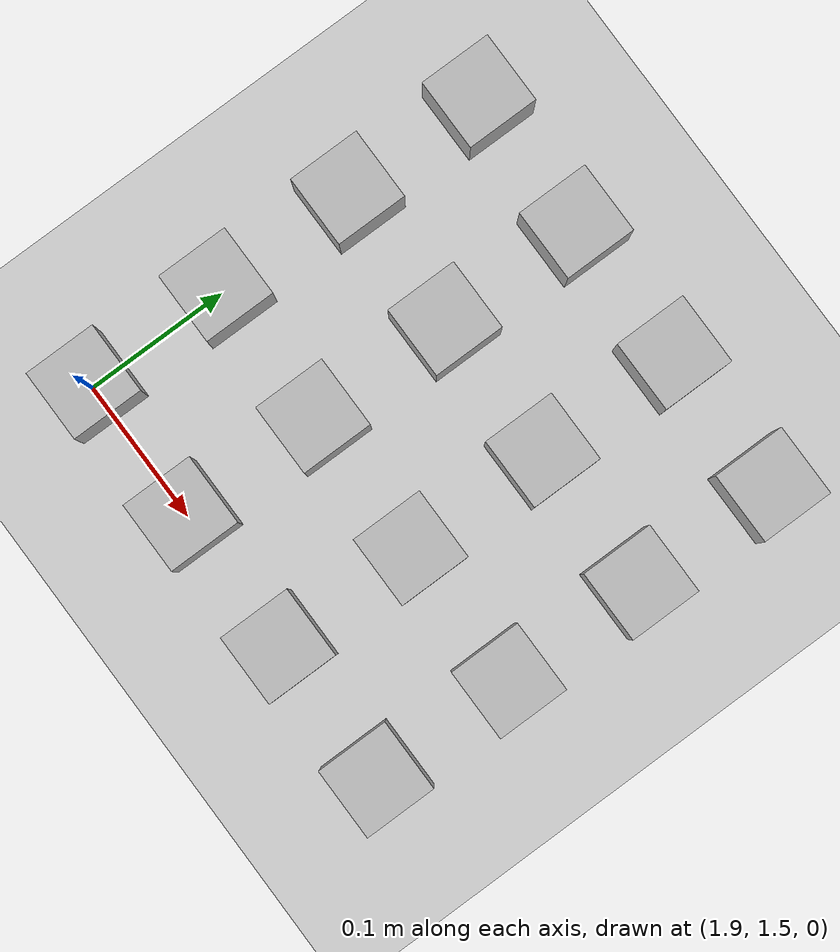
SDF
<sdf version="1.6">
 <world name="default">
  <model name="ground_plane">
   <static>1</static>
   <link name="link">
    <collision name="collision">
     <geometry><plane><normal>0 0 1</normal><size>100 100</size></plane></geometry>
     <surface><friction><ode><mu>100</mu><mu2>50</mu2></ode></friction></surface>
    </collision>
    <visual name="visual">
     <cast_shadows>0</cast_shadows>
     <geometry><plane><normal>0 0 1</normal><size>100 100</size></plane></geometry>
     <material>
      <script><uri>file://media/materials/scripts/gazebo.material</uri><name>Gazebo/Grey</name></script>
     </material>
    </visual>
   </link>
  </model>
  <model name="at68">
   <static>0</static>
   <link name="link">
    <inertial>
     <mass>0.01</mass>
     <inertia><ixx>4e-05</ixx><ixy>0</ixy><ixz>0</ixz><iyy>4e-05</iyy><iyz>0</iyz><izz>4e-05</izz></inertia>
    </inertial>
    <visual name="visual">
     <geometry><box><size>0.05 0.05 0.05</size></box></geometry>
     <material>
      <script>
       <uri>model://at0/materials/scripts</uri>
       <uri>model://at0/materials/textures</uri>
       <name>at0/Diffuse</name>
      </script>
     </material>
    </visual>
    <collision name="collision">
     <geometry><box><size>0.05 0.05 0.05</size></box></geometry>
     <surface><friction><ode><mu>0.8</mu><mu2>0.7</mu2></ode></friction></surface>
    </collision>
   </link>
   <pose>1.9 1.7 0.025 0 -0 0</pose>
  </model>
  <model name="at69">
   <static>0</static>
   <link name="link">
    <inertial>
     <mass>0.01</mass>
     <inertia><ixx>4e-05</ixx><ixy>0</ixy><ixz>0</ixz><iyy>4e-05</iyy><iyz>0</iyz><izz>4e-05</izz></inertia>
    </inertial>
    <visual name="visual">
     <geometry><box><size>0.05 0.05 0.05</size></box></geometry>
     <material>
      <script>
       <uri>model://at0/materials/scripts</uri>
       <uri>model://at0/materials/textures</uri>
       <name>at0/Diffuse</name>
      </script>
     </material>
    </visual>
    <collision name="collision">
     <geometry><box><size>0.05 0.05 0.05</size></box></geometry>
     <surface><friction><ode><mu>0.8</mu><mu2>0.7</mu2></ode></friction></surface>
    </collision>
   </link>
   <pose>2.0 1.7 0.025 0 -0 0</pose>
  </model>
  <model name="at70">
   <static>0</static>
   <link name="link">
    <inertial>
     <mass>0.01</mass>
     <inertia><ixx>4e-05</ixx><ixy>0</ixy><ixz>0</ixz><iyy>4e-05</iyy><iyz>0</iyz><izz>4e-05</izz></inertia>
    </inertial>
    <visual name="visual">
     <geometry><box><size>0.05 0.05 0.05</size></box></geometry>
     <material>
      <script>
       <uri>model://at0/materials/scripts</uri>
       <uri>model://at0/materials/textures</uri>
       <name>at0/Diffuse</name>
      </script>
     </material>
    </visual>
    <collision name="collision">
     <geometry><box><size>0.05 0.05 0.05</size></box></geometry>
     <surface><friction><ode><mu>0.8</mu><mu2>0.7</mu2></ode></friction></surface>
    </collision>
   </link>
   <pose>2.1 1.7 0.025 0 -0 0</pose>
  </model>
  <model name="at71">
   <static>0</static>
   <link name="link">
    <inertial>
     <mass>0.01</mass>
     <inertia><ixx>4e-05</ixx><ixy>0</ixy><ixz>0</ixz><iyy>4e-05</iyy><iyz>0</iyz><izz>4e-05</izz></inertia>
    </inertial>
    <visual name="visual">
     <geometry><box><size>0.05 0.05 0.05</size></box></geometry>
     <material>
      <script>
       <uri>model://at0/materials/scripts</uri>
       <uri>model://at0/materials/textures</uri>
       <name>at0/Diffuse</name>
      </script>
     </material>
    </visual>
    <collision name="collision">
     <geometry><box><size>0.05 0.05 0.05</size></box></geometry>
     <surface><friction><ode><mu>0.8</mu><mu2>0.7</mu2></ode></friction></surface>
    </collision>
   </link>
   <pose>2.2 1.7 0.025 0 -0 0</pose>
  </model>
  <model name="at76">
   <static>0</static>
   <link name="link">
    <inertial>
     <mass>0.01</mass>
     <inertia><ixx>4e-05</ixx><ixy>0</ixy><ixz>0</ixz><iyy>4e-05</iyy><iyz>0</iyz><izz>4e-05</izz></inertia>
    </inertial>
    <visual name="visual">
     <geometry><box><size>0.05 0.05 0.05</size></box></geometry>
     <material>
      <script>
       <uri>model://at0/materials/scripts</uri>
       <uri>model://at0/materials/textures</uri>
       <name>at0/Diffuse</name>
      </script>
     </material>
    </visual>
    <collision name="collision">
     <geometry><box><size>0.05 0.05 0.05</size></box></geometry>
     <surface><friction><ode><mu>0.8</mu><mu2>0.7</mu2></ode></friction></surface>
    </collision>
   </link>
   <pose>1.9 1.6 0.025 0 -0 0</pose>
  </model>
  <model name="at77">
   <static>0</static>
   <link name="link">
    <inertial>
     <mass>0.01</mass>
     <inertia><ixx>4e-05</ixx><ixy>0</ixy><ixz>0</ixz><iyy>4e-05</iyy><iyz>0</iyz><izz>4e-05</izz></inertia>
    </inertial>
    <visual name="visual">
     <geometry><box><size>0.05 0.05 0.05</size></box></geometry>
     <material>
      <script>
       <uri>model://at0/materials/scripts</uri>
       <uri>model://at0/materials/textures</uri>
       <name>at0/Diffuse</name>
      </script>
     </material>
    </visual>
    <collision name="collision">
     <geometry><box><size>0.05 0.05 0.05</size></box></geometry>
     <surface><friction><ode><mu>0.8</mu><mu2>0.7</mu2></ode></friction></surface>
    </collision>
   </link>
   <pose>2.0 1.6 0.025 0 -0 0</pose>
  </model>
  <model name="at78">
   <static>0</static>
   <link name="link">
    <inertial>
     <mass>0.01</mass>
     <inertia><ixx>4e-05</ixx><ixy>0</ixy><ixz>0</ixz><iyy>4e-05</iyy><iyz>0</iyz><izz>4e-05</izz></inertia>
    </inertial>
    <visual name="visual">
     <geometry><box><size>0.05 0.05 0.05</size></box></geometry>
     <material>
      <script>
       <uri>model://at0/materials/scripts</uri>
       <uri>model://at0/materials/textures</uri>
       <name>at0/Diffuse</name>
      </script>
     </material>
    </visual>
    <collision name="collision">
     <geometry><box><size>0.05 0.05 0.05</size></box></geometry>
     <surface><friction><ode><mu>0.8</mu><mu2>0.7</mu2></ode></friction></surface>
    </collision>
   </link>
   <pose>2.1 1.6 0.025 0 -0 0</pose>
  </model>
  <model name="at79">
   <static>0</static>
   <link name="link">
    <inertial>
     <mass>0.01</mass>
     <inertia><ixx>4e-05</ixx><ixy>0</ixy><ixz>0</ixz><iyy>4e-05</iyy><iyz>0</iyz><izz>4e-05</izz></inertia>
    </inertial>
    <visual name="visual">
     <geometry><box><size>0.05 0.05 0.05</size></box></geometry>
     <material>
      <script>
       <uri>model://at0/materials/scripts</uri>
       <uri>model://at0/materials/textures</uri>
       <name>at0/Diffuse</name>
      </script>
     </material>
    </visual>
    <collision name="collision">
     <geometry><box><size>0.05 0.05 0.05</size></box></geometry>
     <surface><friction><ode><mu>0.8</mu><mu2>0.7</mu2></ode></friction></surface>
    </collision>
   </link>
   <pose>2.2 1.6 0.025 0 -0 0</pose>
  </model>
  <model name="at84">
   <static>0</static>
   <link name="link">
    <inertial>
     <mass>0.01</mass>
     <inertia><ixx>4e-05</ixx><ixy>0</ixy><ixz>0</ixz><iyy>4e-05</iyy><iyz>0</iyz><izz>4e-05</izz></inertia>
    </inertial>
    <visual name="visual">
     <geometry><box><size>0.05 0.05 0.05</size></box></geometry>
     <material>
      <script>
       <uri>model://at0/materials/scripts</uri>
       <uri>model://at0/materials/textures</uri>
       <name>at0/Diffuse</name>
      </script>
     </material>
    </visual>
    <collision name="collision">
     <geometry><box><size>0.05 0.05 0.05</size></box></geometry>
     <surface><friction><ode><mu>0.8</mu><mu2>0.7</mu2></ode></friction></surface>
    </collision>
   </link>
   <pose>1.9 1.5 0.025 0 -0 0</pose>
  </model>
  <model name="at85">
   <static>0</static>
   <link name="link">
    <inertial>
     <mass>0.01</mass>
     <inertia><ixx>4e-05</ixx><ixy>0</ixy><ixz>0</ixz><iyy>4e-05</iyy><iyz>0</iyz><izz>4e-05</izz></inertia>
    </inertial>
    <visual name="visual">
     <geometry><box><size>0.05 0.05 0.05</size></box></geometry>
     <material>
      <script>
       <uri>model://at0/materials/scripts</uri>
       <uri>model://at0/materials/textures</uri>
       <name>at0/Diffuse</name>
      </script>
     </material>
    </visual>
    <collision name="collision">
     <geometry><box><size>0.05 0.05 0.05</size></box></geometry>
     <surface><friction><ode><mu>0.8</mu><mu2>0.7</mu2></ode></friction></surface>
    </collision>
   </link>
   <pose>2.0 1.5 0.025 0 -0 0</pose>
  </model>
  <model name="at86">
   <static>0</static>
   <link name="link">
    <inertial>
     <mass>0.01</mass>
     <inertia><ixx>4e-05</ixx><ixy>0</ixy><ixz>0</ixz><iyy>4e-05</iyy><iyz>0</iyz><izz>4e-05</izz></inertia>
    </inertial>
    <visual name="visual">
     <geometry><box><size>0.05 0.05 0.05</size></box></geometry>
     <material>
      <script>
       <uri>model://at0/materials/scripts</uri>
       <uri>model://at0/materials/textures</uri>
       <name>at0/Diffuse</name>
      </script>
     </material>
    </visual>
    <collision name="collision">
     <geometry><box><size>0.05 0.05 0.05</size></box></geometry>
     <surface><friction><ode><mu>0.8</mu><mu2>0.7</mu2></ode></friction></surface>
    </collision>
   </link>
   <pose>2.1 1.5 0.025 0 -0 0</pose>
  </model>
  <model name="at87">
   <static>0</static>
   <link name="link">
    <inertial>
     <mass>0.01</mass>
     <inertia><ixx>4e-05</ixx><ixy>0</ixy><ixz>0</ixz><iyy>4e-05</iyy><iyz>0</iyz><izz>4e-05</izz></inertia>
    </inertial>
    <visual name="visual">
     <geometry><box><size>0.05 0.05 0.05</size></box></geometry>
     <material>
      <script>
       <uri>model://at0/materials/scripts</uri>
       <uri>model://at0/materials/textures</uri>
       <name>at0/Diffuse</name>
      </script>
     </material>
    </visual>
    <collision name="collision">
     <geometry><box><size>0.05 0.05 0.05</size></box></geometry>
     <surface><friction><ode><mu>0.8</mu><mu2>0.7</mu2></ode></friction></surface>
    </collision>
   </link>
   <pose>2.2 1.5 0.025 0 -0 0</pose>
  </model>
  <model name="at92">
   <static>0</static>
   <link name="link">
    <inertial>
     <mass>0.01</mass>
     <inertia><ixx>4e-05</ixx><ixy>0</ixy><ixz>0</ixz><iyy>4e-05</iyy><iyz>0</iyz><izz>4e-05</izz></inertia>
    </inertial>
    <visual name="visual">
     <geometry><box><size>0.05 0.05 0.05</size></box></geometry>
     <material>
      <script>
       <uri>model://at0/materials/scripts</uri>
       <uri>model://at0/materials/textures</uri>
       <name>at0/Diffuse</name>
      </script>
     </material>
    </visual>
    <collision name="collision">
     <geometry><box><size>0.05 0.05 0.05</size></box></geometry>
     <surface><friction><ode><mu>0.8</mu><mu2>0.7</mu2></ode></friction></surface>
    </collision>
   </link>
   <pose>1.9 1.8 0.025 0 -0 0</pose>
  </model>
  <model name="at93">
   <static>0</static>
   <link name="link">
    <inertial>
     <mass>0.01</mass>
     <inertia><ixx>4e-05</ixx><ixy>0</ixy><ixz>0</ixz><iyy>4e-05</iyy><iyz>0</iyz><izz>4e-05</izz></inertia>
    </inertial>
    <visual name="visual">
     <geometry><box><size>0.05 0.05 0.05</size></box></geometry>
     <material>
      <script>
       <uri>model://at0/materials/scripts</uri>
       <uri>model://at0/materials/textures</uri>
       <name>at0/Diffuse</name>
      </script>
     </material>
    </visual>
    <collision name="collision">
     <geometry><box><size>0.05 0.05 0.05</size></box></geometry>
     <surface><friction><ode><mu>0.8</mu><mu2>0.7</mu2></ode></friction></surface>
    </collision>
   </link>
   <pose>2.0 1.8 0.025 0 -0 0</pose>
  </model>
  <model name="at94">
   <static>0</static>
   <link name="link">
    <inertial>
     <mass>0.01</mass>
     <inertia><ixx>4e-05</ixx><ixy>0</ixy><ixz>0</ixz><iyy>4e-05</iyy><iyz>0</iyz><izz>4e-05</izz></inertia>
    </inertial>
    <visual name="visual">
     <geometry><box><size>0.05 0.05 0.05</size></box></geometry>
     <material>
      <script>
       <uri>model://at0/materials/scripts</uri>
       <uri>model://at0/materials/textures</uri>
       <name>at0/Diffuse</name>
      </script>
     </material>
    </visual>
    <collision name="collision">
     <geometry><box><size>0.05 0.05 0.05</size></box></geometry>
     <surface><friction><ode><mu>0.8</mu><mu2>0.7</mu2></ode></friction></surface>
    </collision>
   </link>
   <pose>2.1 1.8 0.025 0 -0 0</pose>
  </model>
  <model name="at95">
   <static>0</static>
   <link name="link">
    <inertial>
     <mass>0.01</mass>
     <inertia><ixx>4e-05</ixx><ixy>0</ixy><ixz>0</ixz><iyy>4e-05</iyy><iyz>0</iyz><izz>4e-05</izz></inertia>
    </inertial>
    <visual name="visual">
     <geometry><box><size>0.05 0.05 0.05</size></box></geometry>
     <material>
      <script>
       <uri>model://at0/materials/scripts</uri>
       <uri>model://at0/materials/textures</uri>
       <name>at0/Diffuse</name>
      </script>
     </material>
    </visual>
    <collision name="collision">
     <geometry><box><size>0.05 0.05 0.05</size></box></geometry>
     <surface><friction><ode><mu>0.8</mu><mu2>0.7</mu2></ode></friction></surface>
    </collision>
   </link>
   <pose>2.2 1.8 0.025 0 -0 0</pose>
  </model>
 </world>
</sdf>
